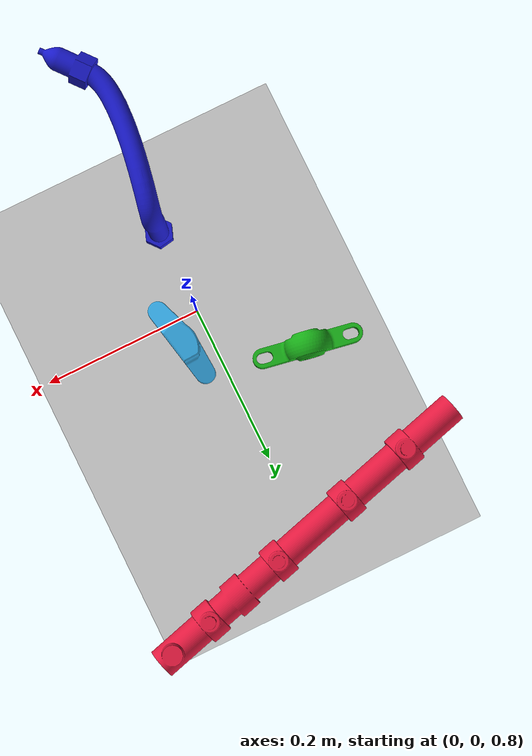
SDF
<sdf version="1.6">
 <world name="default">
  <light name="sun" type="directional">
   <pose>0 0 10 0 -0 0</pose>
   <diffuse>0.8 0.8 0.8 1</diffuse>
   <specular>0.1 0.1 0.1 1</specular>
   <attenuation>
    <range>1000</range>
    <constant>0.9</constant>
    <linear>0.01</linear>
    <quadratic>0.001</quadratic>
   </attenuation>
   <direction>-0.5 0.5 -1</direction>
  </light>
  <model name="ground_plane">
   <static>1</static>
   <link name="link">
    <collision name="collision">
     <geometry><plane><normal>0 0 1</normal><size>100 100</size></plane></geometry>
     <surface><friction><ode><mu>100</mu><mu2>50</mu2></ode></friction></surface>
    </collision>
    <visual name="visual">
     <cast_shadows>0</cast_shadows>
     <geometry><plane><normal>0 0 1</normal><size>100 100</size></plane></geometry>
     <material>
      <script><uri>file://media/materials/scripts/gazebo.material</uri><name>Gazebo/Grey</name></script>
     </material>
    </visual>
   </link>
  </model>
  <gravity>0 0 -9.8</gravity>
  <magnetic_field>6e-06 2.3e-05 -4.2e-05</magnetic_field>
  <atmosphere type="adiabatic"/>
  <physics name="default_physics" default="0" type="ode">
   <max_step_size>0.001</max_step_size>
   <real_time_factor>1</real_time_factor>
   <real_time_update_rate>1000</real_time_update_rate>
  </physics>
  <scene><ambient>0.4 0.4 0.4 1</ambient><background>0.7 0.7 0.7 1</background><shadows>1</shadows></scene>
  <spherical_coordinates>
   <surface_model>EARTH_WGS84</surface_model>
   <latitude_deg>0</latitude_deg>
   <longitude_deg>0</longitude_deg>
   <elevation>0</elevation>
   <heading_deg>0</heading_deg>
  </spherical_coordinates>
  <light name="user_point_light_0" type="point">
   <pose>0 0 2 0 -0 0</pose>
   <diffuse>0.5 0.5 0.5 1</diffuse>
   <specular>0.1 0.1 0.1 1</specular>
   <attenuation>
    <range>20</range>
    <constant>0.5</constant>
    <linear>0.01</linear>
    <quadratic>0.001</quadratic>
   </attenuation>
   <cast_shadows>0</cast_shadows>
   <direction>0 0 -1</direction>
  </light>
  <include><uri>model://3d_fuel_line2</uri><name>3d_fuel_line2</name><pose>0 -0.1 0.84 0 0 234</pose></include>
  <include>
   <uri>model://3d_common_line</uri>
   <name>3d_common_line</name>
   <pose>0.0 0.3 0.9 0 0 305</pose>
  </include>
  <include><uri>model://Valve_Tappet</uri><name>Valve_Tappet</name><pose>0.03 0.03 0.84 0 0 140</pose></include>
  <include><uri>model://3d_housing</uri><name>3d_housing</name><pose>-0.1 0.1 0.84 0 0 270</pose></include>
 </world>
</sdf>

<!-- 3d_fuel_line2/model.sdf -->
<sdf version="1.0">
  <model name="3d_fuel_line">
    <link name="link">
      <inertial>
        <pose>-0.050755 0.000204 0.153613 0 0 0</pose>
        <mass>0.4</mass>
        <inertia>
          <ixx>0.00297608172837544</ixx>
          <ixy>-0.0000525745196449047</ixy>
          <ixz>0.00145735240836997</ixz>
          <iyy>0.00490852227619451</iyy>
          <iyz>-0.0000132696088618256</iyz>
          <izz>0.00203258727298015</izz>
        </inertia>
      </inertial>
      <collision name="collision">
        <pose>0 0 0 0 0 0</pose>
        <geometry>
          <mesh>
            <uri>model://3d_fuel_line2/Fuel-line2_004x.stl</uri>
          </mesh>
        </geometry>
        <surface>
          <friction>
            <ode>
              <mu>100000.0</mu>
              <mu2>100000.0</mu2>
            </ode>
          </friction>
          <contact>
            <ode>
              <kp>1000000.0</kp>
              <kd>1000000.0</kd>
              <min_depth>0.001</min_depth>
              <max_vel>0</max_vel>
            </ode>
          </contact>
        </surface>
      </collision>
      <visual name="visual">
        <pose>0 0 0 0 0 0</pose>
        <geometry>
          <mesh>
            <uri>model://3d_fuel_line2/Fuel-line2_004x.stl</uri>
          </mesh>
        </geometry>
<material>
          <ambient>0.1 0.1 0.8 1</ambient>
          <diffuse>0.1 0.1 0.8 1</diffuse>
          <specular>0.01 0.01 0.01 1</specular>
          <emissive>0 0 0 1</emissive>
          <shader type='vertex'>
            <normal_map>__default__</normal_map>
          </shader>
        </material>
        <cast_shadows>1</cast_shadows>
        <transparency>0</transparency>
      </visual>
    </link>
<static>0</static>
    <allow_auto_disable>1</allow_auto_disable>
  </model>
</sdf>

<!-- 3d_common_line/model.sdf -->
<sdf version="1.0">
  <model name="3d_common_line">
    <link name="link">
      <inertial>
        <pose>0 0 0 0 0 0</pose>
        <mass>0.1</mass>
        <inertia>
          <ixx>0.000901820451840421</ixx>
          <ixy>0.0000000130817604737549</ixy>
          <ixz>0.0000569922654045029</ixz>
          <iyy>0.0330493409127238</iyy>
          <iyz>-0.000000000102659592476005</iyz>
          <izz>0.0326789402829885</izz>
        </inertia>
      </inertial>
      <collision name="collision">
        <pose>0 0 0 0 0 0</pose>
        <geometry>
          <mesh>
            <uri>model://3d_common_line/common-line_003x.stl</uri>
          </mesh>
        </geometry>
        <surface>
          <friction>
            <ode>
              <mu>999999999999999.0</mu>
              <mu2>999999999999999.0</mu2>
            </ode>
          </friction>
          <contact>
            <ode>
              <kp>999999999999999.0</kp>
              <kd>999999999999999.0</kd>
              <min_depth>0.001</min_depth>
              <max_vel>0</max_vel>
            </ode>
          </contact>
        </surface>
      </collision>
      <visual name="visual">
        <pose>0 0 0 0 0 0</pose>
        <geometry>
          <mesh>
            <uri>model://3d_common_line/common-line_003x.stl</uri>
          </mesh>
        </geometry>
<material>
          <ambient>0.9 0.1 0.25 1</ambient>
          <diffuse>0.9 0.1 0.25 1</diffuse>
          <specular>0.01 0.01 0.01 1</specular>
          <emissive>0 0 0 1</emissive>
          <shader type='vertex'>
            <normal_map>__default__</normal_map>
          </shader>
        </material>
        <cast_shadows>1</cast_shadows>
        <transparency>0</transparency>
      </visual>
    </link>
<static>0</static>
    <allow_auto_disable>1</allow_auto_disable>
  </model>
</sdf>

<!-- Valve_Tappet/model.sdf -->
<sdf version='1.6'>
  <model name='Valve_Tappet'>
    <link name='link_12'>
      <pose frame=''>0 0 0 0 -0 0</pose>
<inertial>
    <pose>0 0 0 0 0 0</pose>
    <mass>0.25</mass>
    <inertia>
      <ixx>1.2135371876748723e-05</ixx>
      <ixy>0</ixy>
      <ixz>-0</ixz>
      <iyy>7.96024081407589e-05</iyy>
      <iyz>0</iyz>
      <izz>7.747736298327898e-05</izz>
    </inertia>
  </inertial>
          <visual name='visual'>
        <geometry>
          <mesh>
            <uri>model://Valve_Tappet/Valve_Tappet.stl</uri>
            <scale>2 2 2</scale>
          </mesh>
        </geometry>
        <material>
          <ambient>0.2 0.65 0.88 1</ambient>
          <diffuse>0.2 0.65 0.88 1</diffuse>
          <specular>0.01 0.01 0.01 1</specular>
          <emissive>0 0 0 1</emissive>
          <shader type='vertex'>
            <normal_map>__default__</normal_map>
          </shader>
        </material>
        <cast_shadows>1</cast_shadows>
        <transparency>0</transparency>
      </visual>
      <collision name='collision'>
        <laser_retro>0</laser_retro>
        <max_contacts>10</max_contacts>
        <pose frame=''>0 0 0 0 -0 0</pose>
        <geometry>
          <mesh>
            <uri>model://Valve_Tappet/Valve_Tappet.stl</uri>
            <scale>2 2 2</scale>
          </mesh>
        </geometry>

<surface>
          <friction>
            <ode>
              <mu>10000.0</mu>
              <mu2>10000.0</mu2>
            </ode>
          </friction>
          <contact>
            <ode>
              <kp>10000.0</kp>
              <kd>100.0</kd>
              <min_depth>0.0001</min_depth>
              <max_vel>0</max_vel>
            </ode>
          </contact>
        </surface>
       </collision>
    </link>

    <static>0</static>
    <allow_auto_disable>1</allow_auto_disable>
  </model>
</sdf>

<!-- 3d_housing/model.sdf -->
<sdf version="1.0">
  <model name="3d_housing">
    <link name="link">
      <inertial>
        <pose>-0.000000420 -0.000000049 0.020225052 0 0 0</pose>
        <mass>1.2</mass>
        <inertia>
          <ixx>0.00034503813323916</ixx>
          <ixy>0.00000000276837844530462</ixy>
          <ixz>0.00000000271884924518136</ixz>
          <iyy>0.00115326603947388</iyy>
          <iyz>0.00000000464858431370717</iyz>
          <izz>0.00094516515697669</izz>
        </inertia>
      </inertial>
      <collision name="collision">
        <pose>0 0 0 0 0 0</pose>
        <geometry>
          <mesh>
            <uri>model://3d_housing/housing_001.stl</uri>
          </mesh>
        </geometry>
        <surface>
          <friction>
            <ode>
              <mu>100000.0</mu>
              <mu2>100000.0</mu2>
            </ode>
          </friction>
          <contact>
            <ode>
              <kp>1000000.0</kp>
              <kd>1000000.0</kd>
              <min_depth>0.001</min_depth>
              <max_vel>0</max_vel>
            </ode>
          </contact>
        </surface>
      </collision>
      <visual name="visual">
        <pose>0 0 0 0 0 0</pose>
        <geometry>
          <mesh>
            <uri>model://3d_housing/housing_001.stl</uri>
          </mesh>
        </geometry>
<material>
          <ambient>0.1 0.7 0.1 1</ambient>
          <diffuse>0.1 0.7 0.1 1</diffuse>
          <specular>0.01 0.01 0.01 1</specular>
          <emissive>0 0 0 1</emissive>
          <shader type='vertex'>
            <normal_map>__default__</normal_map>
          </shader>
        </material>
        <cast_shadows>1</cast_shadows>
        <transparency>0</transparency>
      </visual>
    </link>
<static>0</static>
    <allow_auto_disable>1</allow_auto_disable>
  </model>
</sdf>
